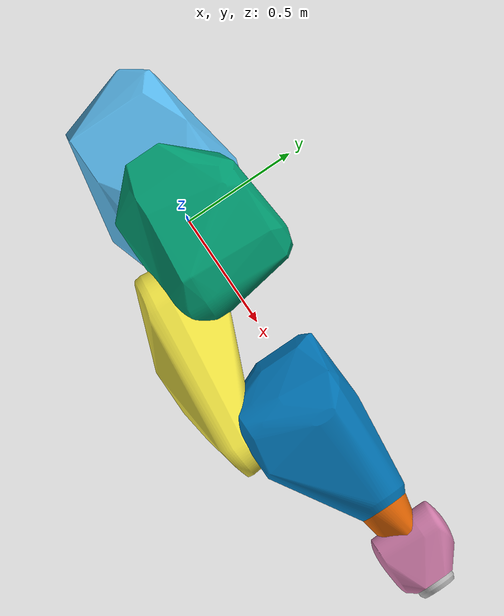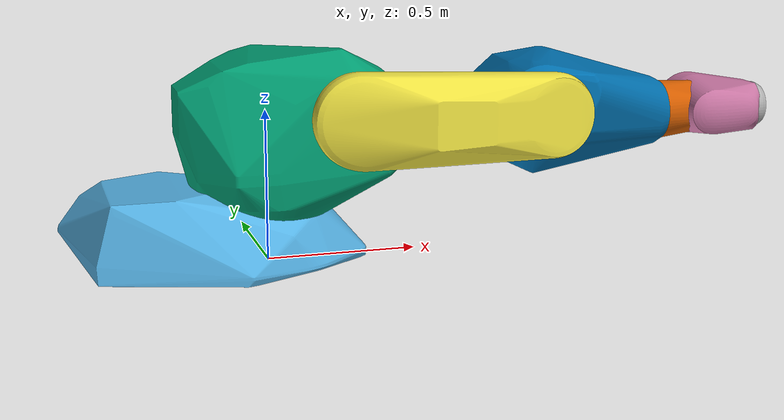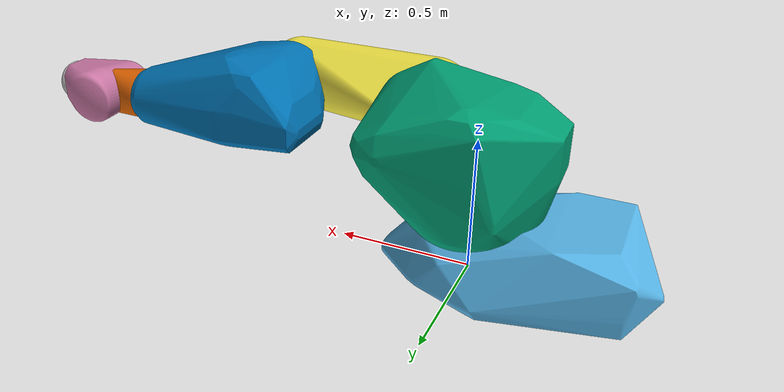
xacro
<?xml version="1.0"?>
<robot xmlns:xacro="http://www.ros.org/wiki/xacro" name="kr_160_r1570_nano">
  <xacro:arg name="prefix" default=""/>
  <xacro:include filename="$(find kuka_robot_descriptions)/urdf/kr_160_r1570_nano_macro.xacro"/>
  <link name="world"/>
  <xacro:kr_160_r1570_nano prefix="$(arg prefix)" parent="world">
    <origin xyz="0 0 0" rpy="0 0 0"/>
  </xacro:kr_160_r1570_nano>
</robot>

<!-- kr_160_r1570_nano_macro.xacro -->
<robot xmlns:xacro="http://www.ros.org/wiki/xacro">

  <!-- KUKA KR 160 R1570 nano - generated from RoboDK .robot -->
  <xacro:macro name="kr_160_r1570_nano" params="prefix parent *origin">

    <material name="${prefix}kr_160_r1570_nano_grey"><color rgba="0.85 0.85 0.85 1.0"/></material>

    <joint name="${prefix}base_joint" type="fixed">
      <xacro:insert_block name="origin"/>
      <parent link="${parent}"/>
      <child link="${prefix}base_link"/>
    </joint>

    <link name="${prefix}base_link">
      <visual>
        <origin xyz="0 0 0" rpy="0 0 0"/>
        <geometry>
          <mesh filename="package://kuka_robot_descriptions/meshes/kr_160_r1570_nano/visual/base_link.dae" scale="0.001 0.001 0.001"/>
        </geometry>
      </visual>
      <collision>
        <origin xyz="0 0 0" rpy="0 0 0"/>
        <geometry>
          <mesh filename="package://kuka_robot_descriptions/meshes/kr_160_r1570_nano/collision/base_link.stl" scale="0.001 0.001 0.001"/>
        </geometry>
      </collision>
    </link>

    <link name="${prefix}link_1">
      <visual>
        <origin xyz="0 0 0" rpy="0 0 0"/>
        <geometry>
          <mesh filename="package://kuka_robot_descriptions/meshes/kr_160_r1570_nano/visual/link_1.dae" scale="0.001 0.001 0.001"/>
        </geometry>
      </visual>
      <collision>
        <origin xyz="0 0 0" rpy="0 0 0"/>
        <geometry>
          <mesh filename="package://kuka_robot_descriptions/meshes/kr_160_r1570_nano/collision/link_1.stl" scale="0.001 0.001 0.001"/>
        </geometry>
      </collision>
    </link>

    <link name="${prefix}link_2">
      <visual>
        <origin xyz="0 0 0" rpy="0 0 0"/>
        <geometry>
          <mesh filename="package://kuka_robot_descriptions/meshes/kr_160_r1570_nano/visual/link_2.dae" scale="0.001 0.001 0.001"/>
        </geometry>
      </visual>
      <collision>
        <origin xyz="0 0 0" rpy="0 0 0"/>
        <geometry>
          <mesh filename="package://kuka_robot_descriptions/meshes/kr_160_r1570_nano/collision/link_2.stl" scale="0.001 0.001 0.001"/>
        </geometry>
      </collision>
    </link>

    <link name="${prefix}link_3">
      <visual>
        <origin xyz="0 0 0" rpy="0 0 0"/>
        <geometry>
          <mesh filename="package://kuka_robot_descriptions/meshes/kr_160_r1570_nano/visual/link_3.dae" scale="0.001 0.001 0.001"/>
        </geometry>
      </visual>
      <collision>
        <origin xyz="0 0 0" rpy="0 0 0"/>
        <geometry>
          <mesh filename="package://kuka_robot_descriptions/meshes/kr_160_r1570_nano/collision/link_3.stl" scale="0.001 0.001 0.001"/>
        </geometry>
      </collision>
    </link>

    <link name="${prefix}link_4">
      <visual>
        <origin xyz="0 0 0" rpy="0 0 0"/>
        <geometry>
          <mesh filename="package://kuka_robot_descriptions/meshes/kr_160_r1570_nano/visual/link_4.dae" scale="0.001 0.001 0.001"/>
        </geometry>
      </visual>
      <collision>
        <origin xyz="0 0 0" rpy="0 0 0"/>
        <geometry>
          <mesh filename="package://kuka_robot_descriptions/meshes/kr_160_r1570_nano/collision/link_4.stl" scale="0.001 0.001 0.001"/>
        </geometry>
      </collision>
    </link>

    <link name="${prefix}link_5">
      <visual>
        <origin xyz="0 0 0" rpy="0 0 0"/>
        <geometry>
          <mesh filename="package://kuka_robot_descriptions/meshes/kr_160_r1570_nano/visual/link_5.dae" scale="0.001 0.001 0.001"/>
        </geometry>
      </visual>
      <collision>
        <origin xyz="0 0 0" rpy="0 0 0"/>
        <geometry>
          <mesh filename="package://kuka_robot_descriptions/meshes/kr_160_r1570_nano/collision/link_5.stl" scale="0.001 0.001 0.001"/>
        </geometry>
      </collision>
    </link>

    <link name="${prefix}link_6">
      <visual>
        <origin xyz="0 0 0" rpy="0 0 0"/>
        <geometry>
          <mesh filename="package://kuka_robot_descriptions/meshes/kr_160_r1570_nano/visual/link_6.dae" scale="0.001 0.001 0.001"/>
        </geometry>
      </visual>
      <collision>
        <origin xyz="0 0 0" rpy="0 0 0"/>
        <geometry>
          <mesh filename="package://kuka_robot_descriptions/meshes/kr_160_r1570_nano/collision/link_6.stl" scale="0.001 0.001 0.001"/>
        </geometry>
      </collision>
    </link>

    <joint name="${prefix}joint_1" type="revolute">
      <parent link="${prefix}base_link"/>
      <child link="${prefix}link_1"/>
      <origin xyz="0 0 0.5" rpy="0 -0 0"/>
      <axis xyz="0 0 1"/>
      <limit lower="-3.1415927" upper="3.1415927" effort="100.0" velocity="3.1416"/>
    </joint>

    <joint name="${prefix}joint_2" type="revolute">
      <parent link="${prefix}link_1"/>
      <child link="${prefix}link_2"/>
      <origin xyz="0.25 0 0" rpy="-1.5707963 -0 0"/>
      <axis xyz="0 0 1"/>
      <limit lower="-2.5307274" upper="0.78539816" effort="100.0" velocity="3.1416"/>
    </joint>

    <joint name="${prefix}joint_3" type="revolute">
      <parent link="${prefix}link_2"/>
      <child link="${prefix}link_3"/>
      <origin xyz="0.61 0 0" rpy="0 -0 -1.5707963"/>
      <axis xyz="0 0 1"/>
      <limit lower="-2.268928" upper="2.5307274" effort="100.0" velocity="3.1416"/>
    </joint>

    <joint name="${prefix}joint_4" type="revolute">
      <parent link="${prefix}link_3"/>
      <child link="${prefix}link_4"/>
      <origin xyz="-0.07 0.71 4.3474961e-17" rpy="-1.5707963 -0 0"/>
      <axis xyz="0 0 1"/>
      <limit lower="-6.1086524" upper="6.1086524" effort="100.0" velocity="3.1416"/>
    </joint>

    <joint name="${prefix}joint_5" type="revolute">
      <parent link="${prefix}link_4"/>
      <child link="${prefix}link_5"/>
      <origin xyz="0 0 0" rpy="1.5707963 -0 0"/>
      <axis xyz="0 0 1"/>
      <limit lower="-2.0943951" upper="2.0943951" effort="100.0" velocity="3.1416"/>
    </joint>

    <joint name="${prefix}joint_6" type="revolute">
      <parent link="${prefix}link_5"/>
      <child link="${prefix}link_6"/>
      <origin xyz="0 0.215 1.3164953e-17" rpy="1.5707963 1.2246468e-16 3.1415927"/>
      <axis xyz="0 0 1"/>
      <limit lower="-6.1086524" upper="6.1086524" effort="100.0" velocity="3.1416"/>
    </joint>

    <link name="${prefix}flange"/>
    <joint name="${prefix}link_6-flange" type="fixed">
      <parent link="${prefix}link_6"/>
      <child link="${prefix}flange"/>
      <origin xyz="0 0 0" rpy="0 0 0"/>
    </joint>
    <link name="${prefix}tool0"/>
    <joint name="${prefix}flange-tool0" type="fixed">
      <parent link="${prefix}flange"/>
      <child link="${prefix}tool0"/>
      <origin xyz="0 0 0" rpy="0 0 0"/>
    </joint>

  </xacro:macro>
</robot>
